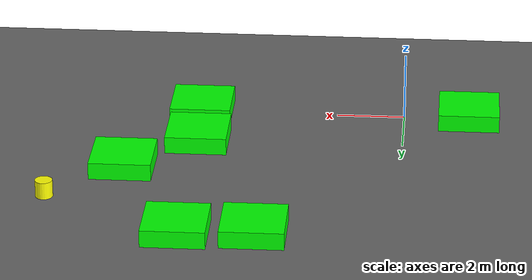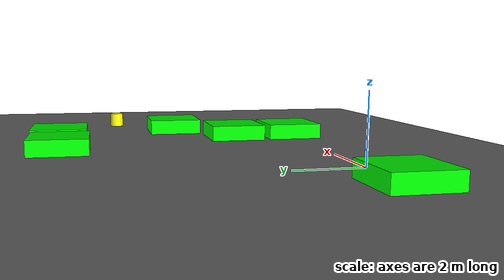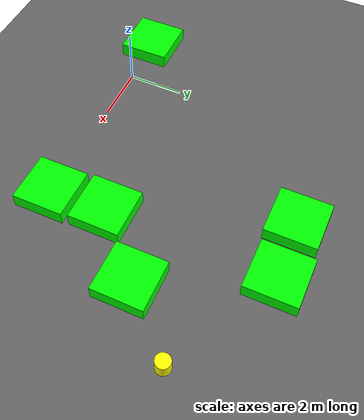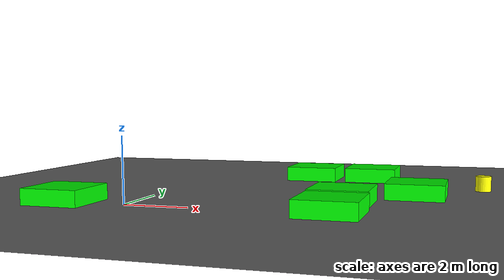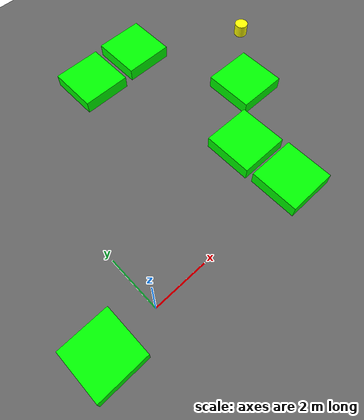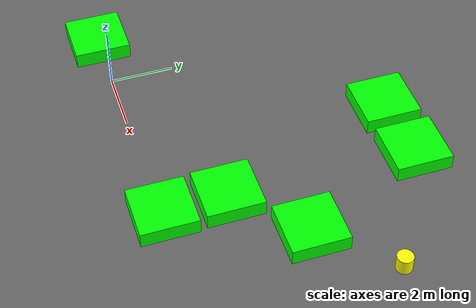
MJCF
<mujoco model="lvl4_standard_obs6_d2mid_seed1138">
    <compiler angle="degree" coordinate="local" inertiafromgeom="true"/>
    <option integrator="RK4" timestep="0.01"/>

    <asset>
        <texture builtin="gradient" height="100" rgb1="0.6 0.8 1" rgb2="0 0 0" type="skybox" width="100"/>
        <texture name="floor_texture" type="2d" builtin="checker" width="100" height="100" rgb1="0 0 0" rgb2="0.8 0.8 0.8"/>
        <material name="MatPlane" reflectance="0.5" shininess="1" specular="1" texrepeat="10 10" texture="floor_texture"/>
    </asset>

    <!-- Excluding the contact between the agent and the goal, and the agent and the floor -->
    <contact>
        <exclude body1="agent" body2="goal"/>
        <exclude body1 = "agent" body2 = "floor"/>
    </contact>

    <extension>
        <plugin plugin = "mujoco.pid">
            <instance name = "pid1">
                <config key="kp" value="2"/>
                <config key="ki" value="0"/>
                <config key="kd" value="55"/>
            </instance>
        </plugin>
    </extension>

    <worldbody>
        <light cutoff="100" diffuse="1 1 1" dir="-0 0 -1.3" directional="true" exponent="1" pos="0 0 1.3" specular=".1 .1 .1"/>
        <body name="floor" pos="0 0 0">
            <geom name="floor_geom" type="plane" size="20 20 0.1" material="MatPlane"/>
        </body>

                <body name="goal" pos="0.0000 0.0000 0">
            <geom name="goal_geom" type="plane" size="0.5 0.5 1" pos="0 0 0" rgba="1 0 0 1"/>
        </body>

                <body name="agent" pos="10.0000 6.0000 0.250">
            <joint name="j1" type="slide" axis ="1 0 0 "/>
            <joint name="j2" type="slide" axis ="0 1 0 "/>
            <geom name="agent_geom" type="cylinder" size="0.25 0.25 0.250" rgba="1 1 0 1"/>
        </body>

        <body name="obstacle1" pos="3.9117 7.9287 0.250">  <geom name="obstacle1_geom" type="box" size="0.9000 0.9000 0.250" rgba="0 1 0 1"/></body>
        <body name="obstacle2" pos="6.0560 8.0262 0.250">  <geom name="obstacle2_geom" type="box" size="0.9000 0.9000 0.250" rgba="0 1 0 1"/></body>
        <body name="obstacle3" pos="8.0083 3.9561 0.250">  <geom name="obstacle3_geom" type="box" size="0.9000 0.9000 0.250" rgba="0 1 0 1"/></body>
        <body name="obstacle4" pos="6.0160 2.0792 0.250">  <geom name="obstacle4_geom" type="box" size="0.9000 0.9000 0.250" rgba="0 1 0 1"/></body>
        <body name="obstacle5" pos="-1.9252 -0.0169 0.250">  <geom name="obstacle5_geom" type="box" size="0.9000 0.9000 0.250" rgba="0 1 0 1"/></body>
        <body name="obstacle6" pos="6.0808 0.0671 0.250">  <geom name="obstacle6_geom" type="box" size="0.9000 0.9000 0.250" rgba="0 1 0 1"/></body>

    </worldbody>

    <sensor>
<!-- SENSORS -->

        <distance name="dist1" geom1="agent_geom" geom2="obstacle1_geom" cutoff="1.5"/>
        <distance name="dist2" geom1="agent_geom" geom2="obstacle2_geom" cutoff="1.5"/>
        <distance name="dist3" geom1="agent_geom" geom2="obstacle3_geom" cutoff="1.5"/>
        <distance name="dist4" geom1="agent_geom" geom2="obstacle4_geom" cutoff="1.5"/>
        <distance name="dist5" geom1="agent_geom" geom2="obstacle5_geom" cutoff="1.5"/>
        <distance name="dist6" geom1="agent_geom" geom2="obstacle6_geom" cutoff="1.5"/>
</sensor>

    <actuator>
        <plugin joint="j1" plugin="mujoco.pid" instance="pid1" />
        <plugin joint="j2" plugin="mujoco.pid" instance="pid1"/>
    </actuator>
</mujoco>
